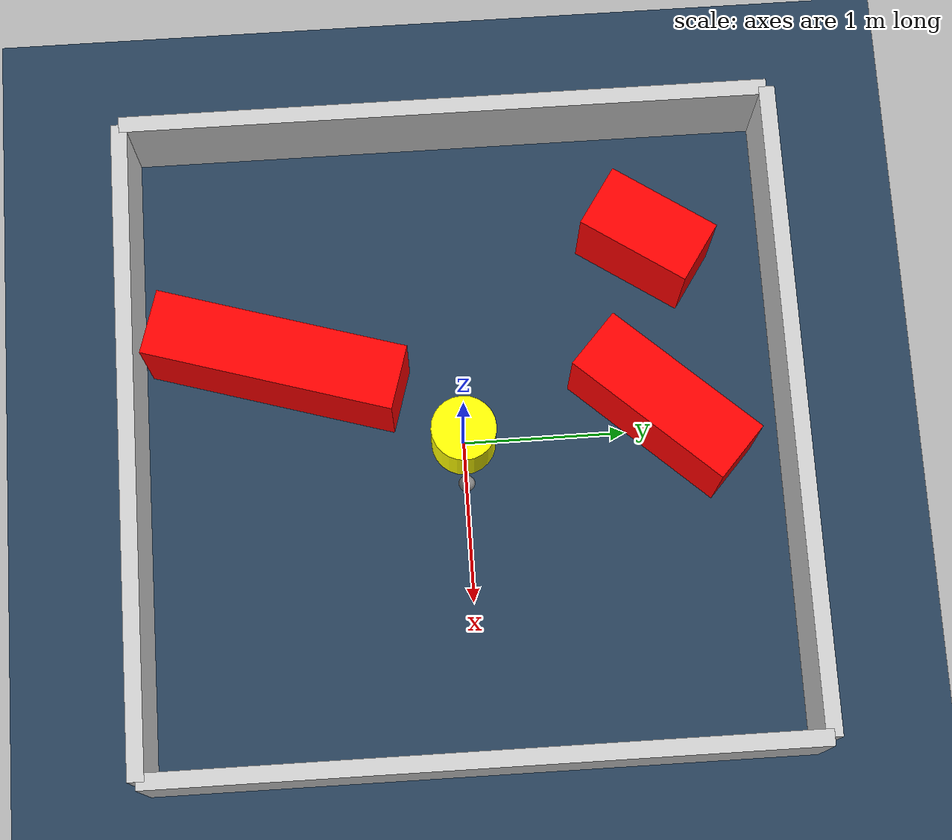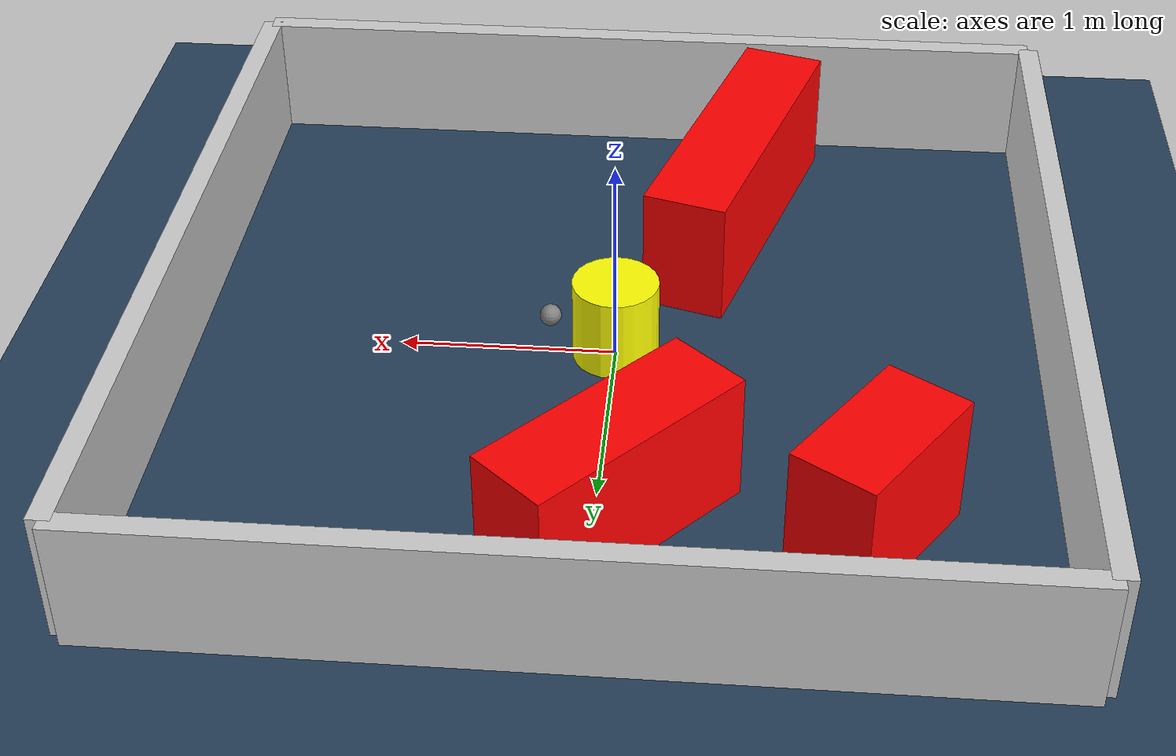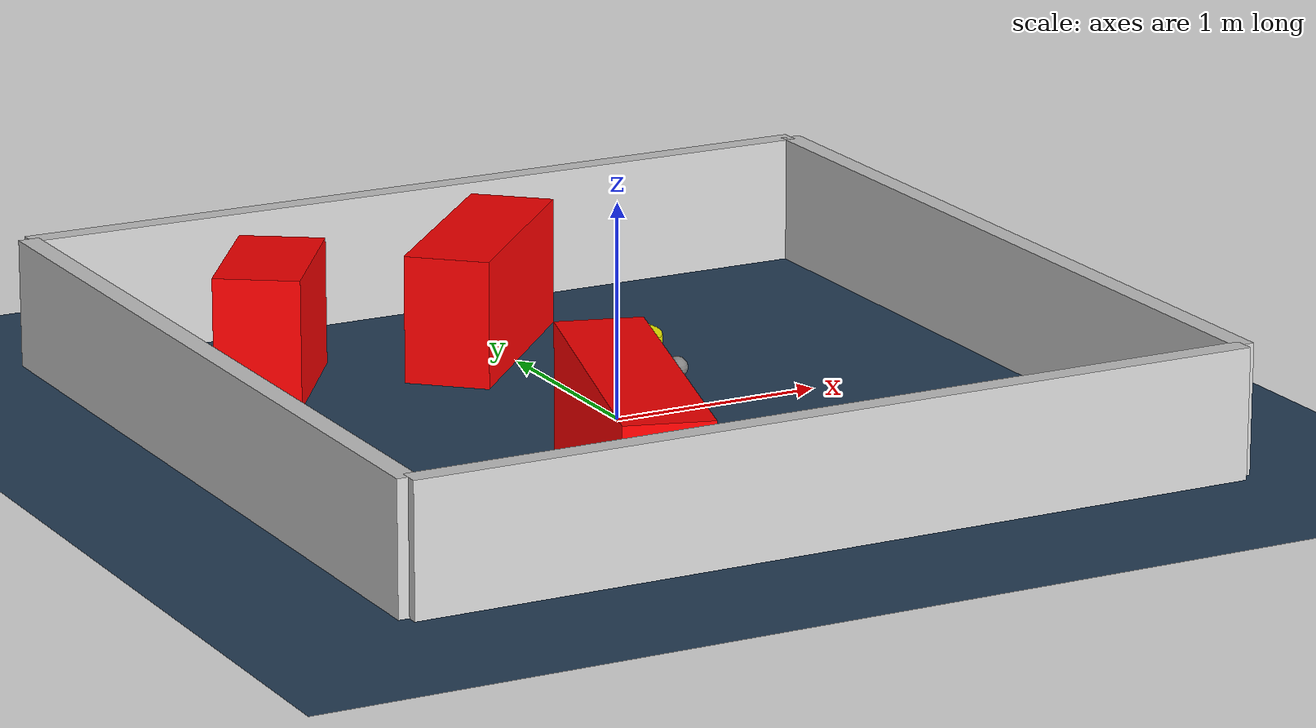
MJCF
<?xml version="1.0" ?>
<mujoco model="generated_environment">
  <option timestep="0.01" integrator="RK4" cone="elliptic"/>
  <default>
    <geom density="1"/>
  </default>
  <asset>
    <texture builtin="gradient" height="3072" rgb1="0.3 0.5 0.7" rgb2="0 0 0" type="skybox" width="512"/>
    <texture builtin="checker" height="300" mark="edge" markrgb="0.8 0.8 0.8" name="groundplane" rgb1="0.2 0.3 0.4" rgb2="0.1 0.2 0.3" type="2d" width="300"/>
    <material name="groundplane" reflectance="0.2" texrepeat="5 5" texture="groundplane" texuniform="true"/>
    <material name="robot" rgba="0.0 1.0 0.0 1"/>
  </asset>
  <worldbody>
    <light dir="0 0 -1" directional="true" pos="0 0 1.5"/>
    <geom condim="4" friction="1.0 0.005 0.001" material="groundplane" name="floor" size="0 0 0.05" type="plane"/>
    <body name="walls">
      <geom name="wall_1" condim="4" pos="-2.0 0.0 0.3" rgba="0.800000011920929 0.800000011920929 0.800000011920929 1.0" size="0.05 2.0 0.3" type="box"/>
      <geom name="wall_2" condim="4" pos="2.0 0.0 0.3" rgba="0.800000011920929 0.800000011920929 0.800000011920929 1.0" size="0.05 2.0 0.3" type="box"/>
      <geom name="wall_3" condim="4" pos="0.0 -2.0 0.3" rgba="0.800000011920929 0.800000011920929 0.800000011920929 1.0" size="2.0 0.05 0.3" type="box"/>
      <geom name="wall_4" condim="4" pos="0.0 2.0 0.3" rgba="0.800000011920929 0.800000011920929 0.800000011920929 1.0" size="2.0 0.05 0.3" type="box"/>
    </body>
    <body name="robot">
      <joint name="joint_x" type="slide" pos="0 0 0" axis="1 0 0"/>
      <joint name="joint_y" type="slide" pos="0 0 0" axis="0 1 0"/>
      <geom name="robot" type="sphere" pos="0.3 0.0 0.2" size="0.05" mass="5." friction="1.0 0.005 0.0001" condim="4" rgba="0.5 0.5 0.5 1.0"/>
      <site name="sensor_ball"/>
    </body>
    <body name="obstacle_movable_1">
      <geom name="obstacle_movable_1" condim="4" pos="0.0 0.0 0.2" euler="0 0 0.0" friction="1.0 0.005 0.001" rgba="1.0 1.0 0.0 1.0" size="0.2 0.2 0.0" type="cylinder" mass="0.1"/>
      <joint type="free"/>
    </body>
    <body name="obstacle_2_static">
      <geom name="obstacle_2_static" condim="4" pos="-0.07921033362247454 1.2196866879748984 0.3" euler="0 0 227.82920515131056" friction="1.0 0.005 0.001" rgba="1 0 0 1" size="0.5620820696723465 0.2 0.3" type="box"/>
    </body>
    <body name="obstacle_3_static">
      <geom name="obstacle_3_static" condim="4" pos="-0.5084922910308464 -1.1099312347335288 0.3" euler="0 0 253.3828537091981" friction="1.0 0.005 0.001" rgba="1 0 0 1" size="0.7756657837527448 0.2 0.3" type="box"/>
    </body>
    <body name="obstacle_4_static">
      <geom name="obstacle_4_static" condim="4" pos="-1.155127511331011 1.1987745908730851 0.3" euler="0 0 236.06243981300315" friction="1.0 0.005 0.001" rgba="1 0 0 1" size="0.36273179039139525 0.2 0.3" type="box"/>
    </body>
  </worldbody>
  <actuator>
    <motor name="actuator_x" joint="joint_x" gear="1" ctrlrange="-1 1"/>
    <motor name="actuator_y" joint="joint_y" gear="1" ctrlrange="-1 1"/>
  </actuator>
</mujoco>
